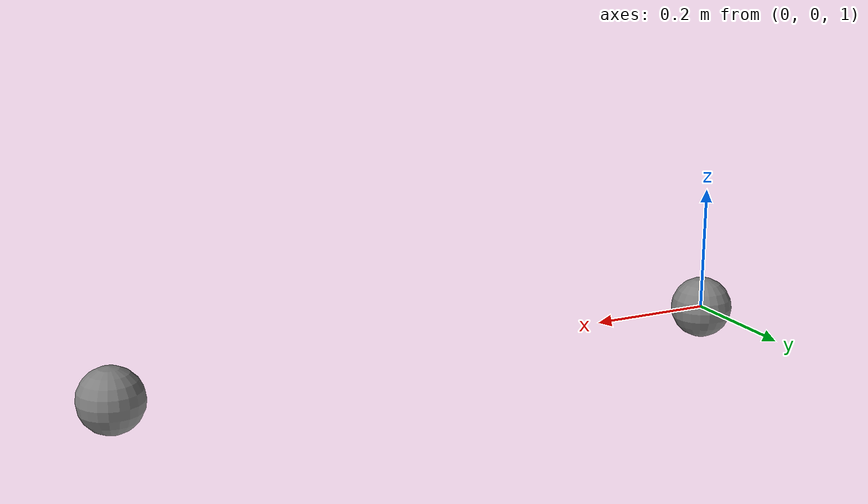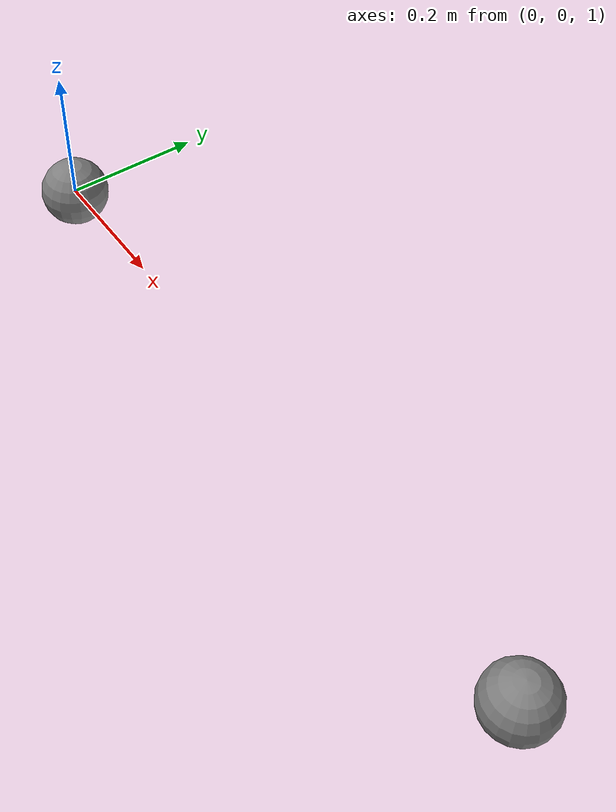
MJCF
<mujoco model="hinge_1m">
        <option gravity="0 0 -9.81" timestep="0.002">
            <flag sleep="enable"/>
        </option>
        <worldbody>
            <body name="link1" pos="0 0 1">
                <joint name="hinge1" type="hinge" axis="0 1 0"/>
                <geom type="sphere" size="0.05" mass="1.0"/>
                <body name="link2" pos="1 0 0">
                    <geom type="sphere" size="0.05" mass="0.5"/>
                </body>
            </body>
        </worldbody>
    </mujoco>
